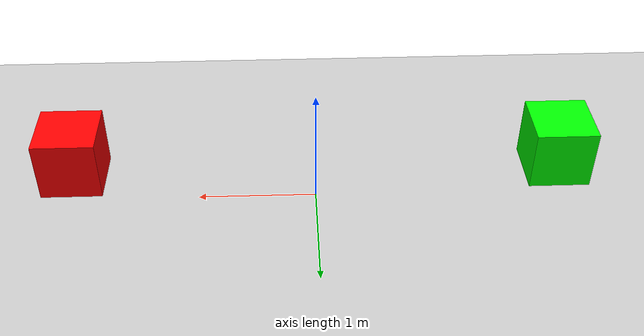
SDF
<sdf version="1.7">
  <world name="default">

    <include>
      <uri>model://sun</uri>
    </include>

    <include>
      <uri>model://ground_plane</uri>
    </include>

    <!-- BOX 1 -->
    <model name="box1">
      <static>true</static>
      <pose>2 0 0.5 0 0 0</pose>
      <link name="link">
        <visual>
          <geometry>
            <box>
              <size>0.5 0.5 0.5</size>
            </box>
          </geometry>
          <material>
            <ambient>1 0 0 1</ambient>
            <diffuse>1 0 0 1</diffuse>
          </material>
        </visual>
      </link>
    </model>

    <!-- BOX 2 -->
    <model name="box2">
      <static>true</static>
      <pose>-2 0 0.5 0 0 0</pose>
      <link name="link">
        <visual>
          <geometry>
            <box>
              <size>0.5 0.5 0.5</size>
            </box>
          </geometry>
          <material>
            <ambient>0 1 0 1</ambient>
            <diffuse>0 1 0 1</diffuse>
          </material>
        </visual>
      </link>
    </model>

  </world>
</sdf>
